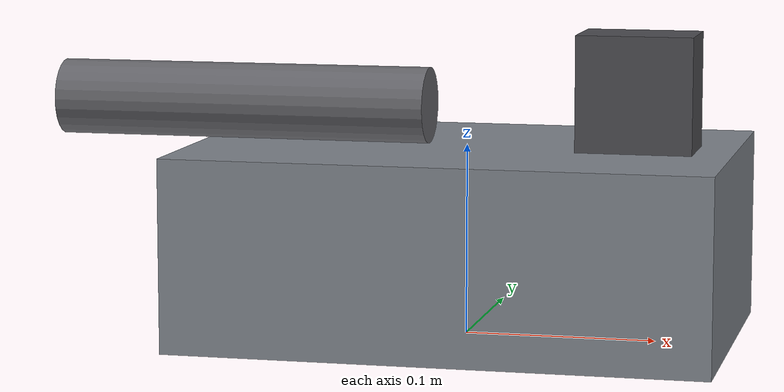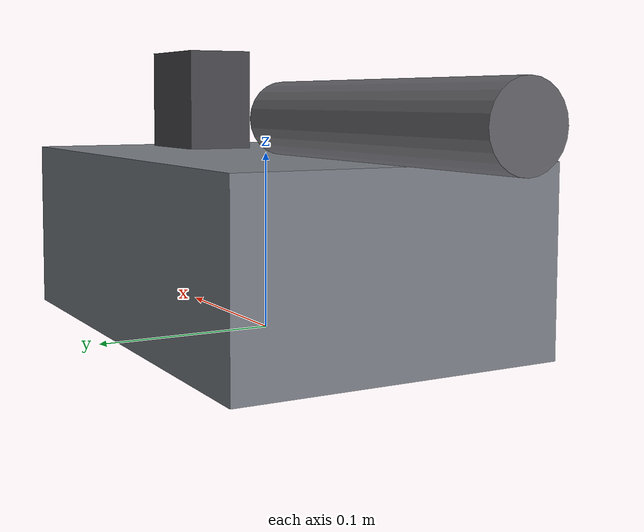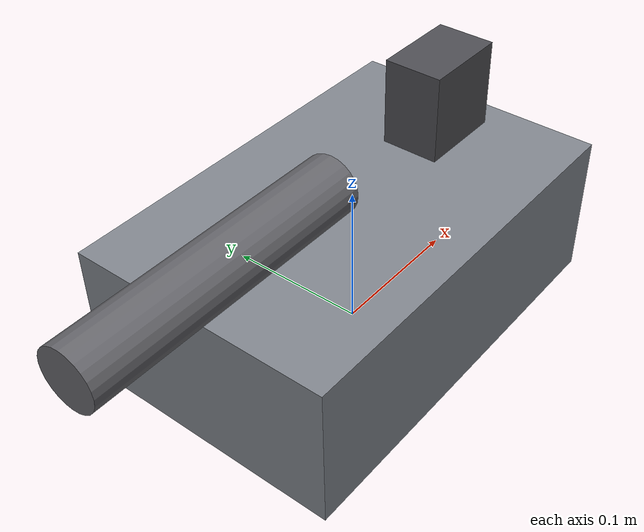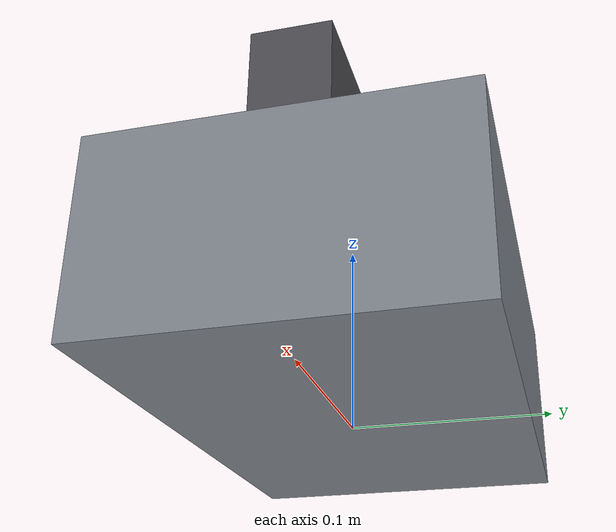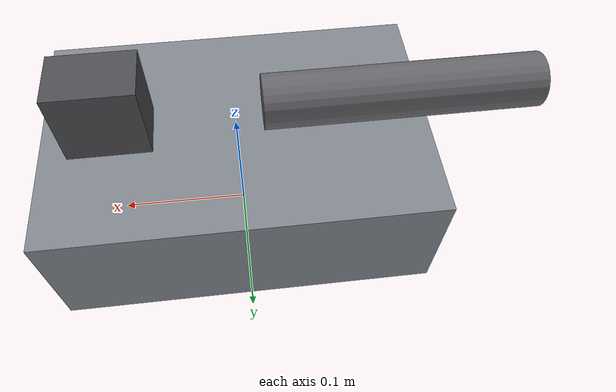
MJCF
<?xml version="1.0" encoding="utf-8"?>
<mujoco model="injection_molding_machine">
  <compiler angle="radian" autolimits="true"/>
  <default>
    <default class="body"><geom contype="1" conaffinity="1"/></default>
  </default>
  <worldbody>
    <body name="base">
      <geom type="box" size="0.14 0.09 0.05" pos="0 0 0.05" rgba="0.5 0.52 0.55 1" class="body"/>
      <geom type="cylinder" size="0.02 0.10" pos="-0.12 0 0.12" rgba="0.4 0.4 0.42 1" class="body" quat="0.7071068 0 0.7071068 0"/>
      <body name="mold_clamp" pos="0.09 0 0.10">
        <joint name="mold_clamp_joint" type="slide" axis="0 1 0" range="-0.05 0" damping="1.0" frictionloss="0.3"/>
  <geom type="box" size="0.03 0.02 0.06" pos="0 0 0" rgba="0.3 0.3 0.32 1" class="body"/>
      </body>
    </body>
  </worldbody>
</mujoco>
